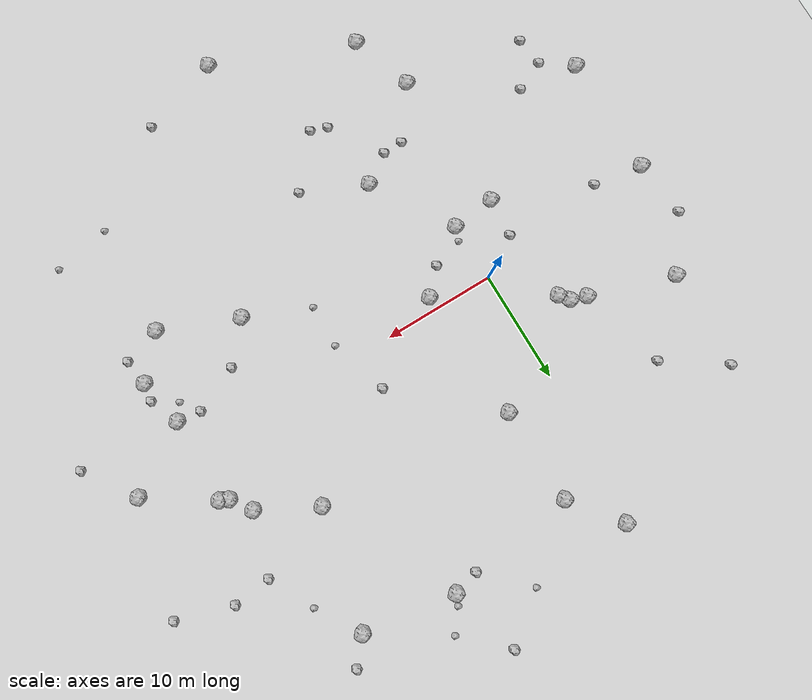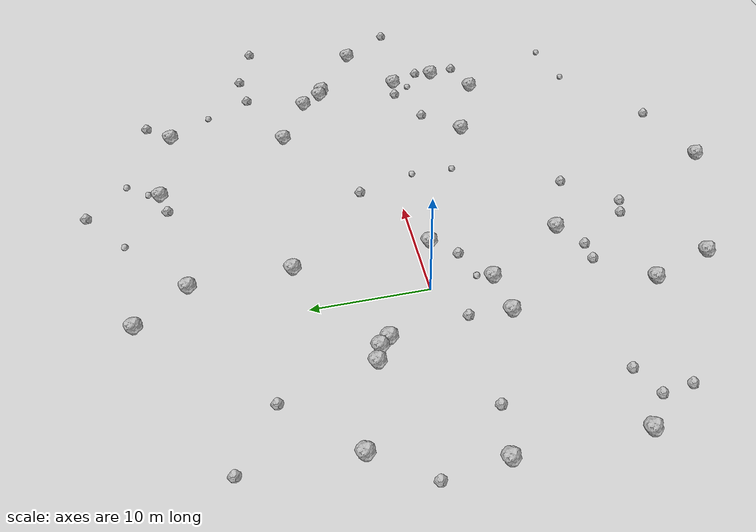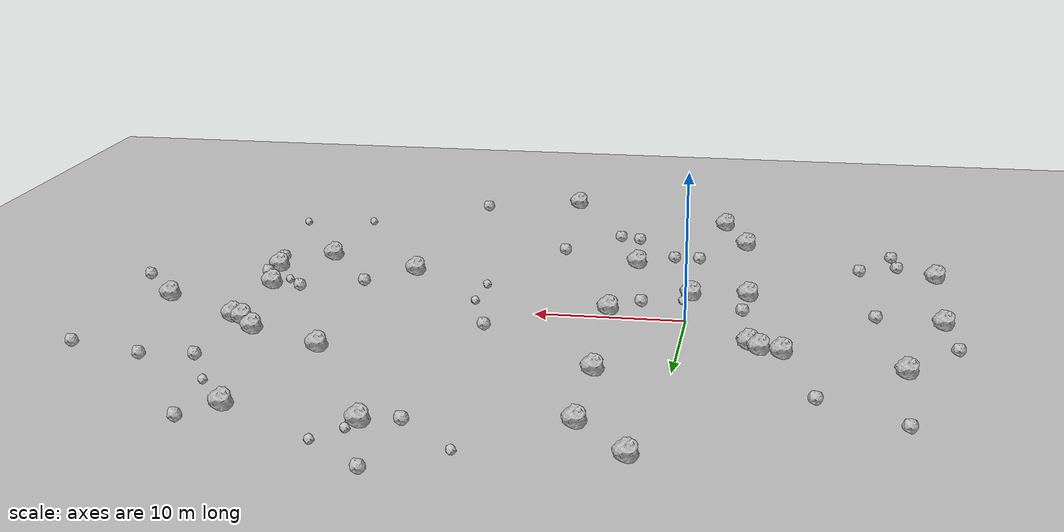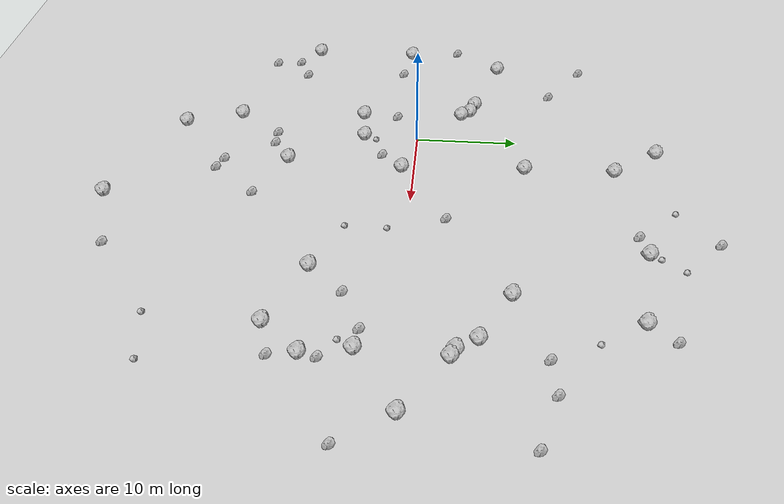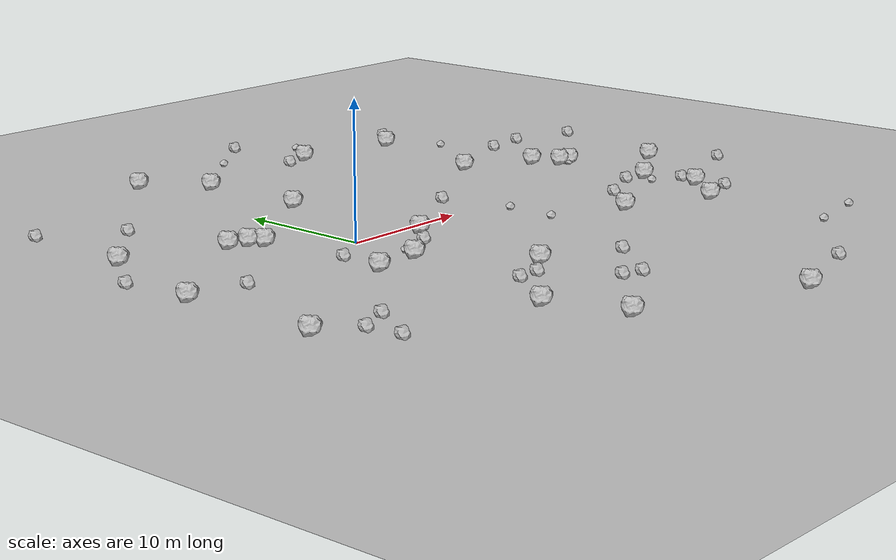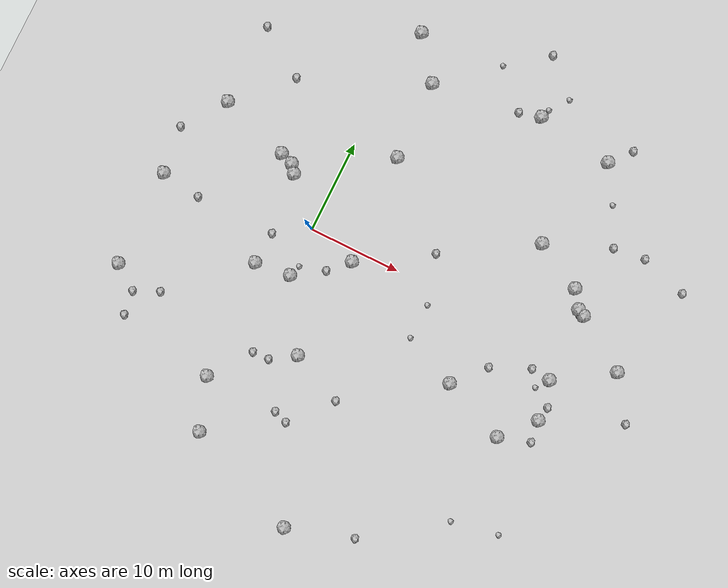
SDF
<sdf version="1.6">
 <world name="default">
  <include><uri>model://custom_ground</uri></include>
  <include><uri>model://sun</uri></include>
  <model name="rock1_0_0">
   <include><uri>model://rock1</uri><pose>22.308620223104214 9.26747592368821 0.5 0 0 0</pose></include>
  </model>
  <model name="rock1_0_1">
   <include><uri>model://rock1</uri><pose>4.562709222028513 -12.443384446380044 0.5 0 0 0</pose></include>
  </model>
  <model name="rock1_0_2">
   <include><uri>model://rock1</uri><pose>24.811328525167355 19.98973940357446 0.5 0 0 0</pose></include>
  </model>
  <model name="rock1_0_3">
   <include><uri>model://rock1</uri><pose>20.008870464836406 -8.090587868503892 0.5 0 0 0</pose></include>
  </model>
  <model name="rock1_0_4">
   <include><uri>model://rock1</uri><pose>29.470454110968937 4.356780229560499 0.5 0 0 0</pose></include>
  </model>
  <model name="rock1_0_5">
   <include><uri>model://rock1</uri><pose>16.444151759151417 21.254955831086896 0.5 0 0 0</pose></include>
  </model>
  <model name="rock1_0_6">
   <include><uri>model://rock1</uri><pose>27.441193810272722 6.542060844040272 0.5 0 0 0</pose></include>
  </model>
  <model name="rock1_0_7">
   <include><uri>model://rock1</uri><pose>-2.9822028394363436 -18.50982843856778 0.5 0 0 0</pose></include>
  </model>
  <model name="rock1_0_8">
   <include><uri>model://rock1</uri><pose>-16.56201720687895 -1.5163516792459788 0.5 0 0 0</pose></include>
  </model>
  <model name="rock1_0_9">
   <include><uri>model://rock1</uri><pose>-16.530783998350156 -12.092335569259326 0.5 0 0 0</pose></include>
  </model>
  <model name="rock1_0_10">
   <include><uri>model://rock1</uri><pose>-1.1012876928839717 -24.00537039598757 0.5 0 0 0</pose></include>
  </model>
  <model name="rock1_0_11">
   <include><uri>model://rock1</uri><pose>35.163526501504606 0.6184716903843572 0.5 0 0 0</pose></include>
  </model>
  <model name="rock1_0_12">
   <include><uri>model://rock1</uri><pose>-4.257730570879854 4.400440445822156 0.5 0 0 0</pose></include>
  </model>
  <model name="rock1_0_13">
   <include><uri>model://rock1</uri><pose>4.723110136697105 10.730525927355636 0.5 0 0 0</pose></include>
  </model>
  <model name="rock1_0_14">
   <include><uri>model://rock1</uri><pose>-6.360068208035969 5.76799929947844 0.5 0 0 0</pose></include>
  </model>
  <model name="rock1_0_15">
   <include><uri>model://rock1</uri><pose>28.7107455233144 4.729115519488744 0.5 0 0 0</pose></include>
  </model>
  <model name="rock1_0_16">
   <include><uri>model://rock1</uri><pose>5.287955324384686 -1.1939486858563733 0.5 0 0 0</pose></include>
  </model>
  <model name="rock1_0_17">
   <include><uri>model://rock1</uri><pose>0.11741777801728404 -5.321752076599356 0.5 0 0 0</pose></include>
  </model>
  <model name="rock1_0_18">
   <include><uri>model://rock1</uri><pose>-4.952026050579846 5.272826522183607 0.5 0 0 0</pose></include>
  </model>
  <model name="rock1_0_19">
   <include><uri>model://rock1</uri><pose>29.94336174089542 -7.479580578999805 0.5 0 0 0</pose></include>
  </model>
  <model name="rock1_0_20">
   <include><uri>model://rock1</uri><pose>11.147084034901372 -28.95110937901299 0.5 0 0 0</pose></include>
  </model>
  <model name="rock1_0_21">
   <include><uri>model://rock1</uri><pose>1.1920050839972731 23.755741985726623 0.5 0 0 0</pose></include>
  </model>
  <model name="rock1_0_22">
   <include><uri>model://rock1</uri><pose>-3.7432479727045482 -5.740278726342208 0.5 0 0 0</pose></include>
  </model>
  <model name="rock1_0_23">
   <include><uri>model://rock1</uri><pose>29.165776066680763 -3.224174789111018 0.5 0 0 0</pose></include>
  </model>
  <model name="rock1_0_24">
   <include><uri>model://rock1</uri><pose>26.854620622841296 -10.90775442842148 0.5 0 0 0</pose></include>
  </model>
  <model name="rock1_0_25">
   <include><uri>model://rock1</uri><pose>-13.900711147749242 8.191447904003972 0.5 0 0 0</pose></include>
  </model>
  <model name="rock1_0_26">
   <include><uri>model://rock1</uri><pose>4.567770396846768 19.39016596392149 0.5 0 0 0</pose></include>
  </model>
  <model name="rock2_0_0">
   <include><uri>model://rock2</uri><pose>30.2533708564413 -5.8881054527053 0.3 0 0 0</pose></include>
  </model>
  <model name="rock2_0_1">
   <include><uri>model://rock2</uri><pose>22.935777543572016 -4.816369977577438 0.3 0 0 0</pose></include>
  </model>
  <model name="rock2_0_2">
   <include><uri>model://rock2</uri><pose>14.69397805485147 27.730520868193338 0.3 0 0 0</pose></include>
  </model>
  <model name="rock2_0_3">
   <include><uri>model://rock2</uri><pose>6.4897586655811 -19.231469428955688 0.3 0 0 0</pose></include>
  </model>
  <model name="rock2_0_4">
   <include><uri>model://rock2</uri><pose>14.086981989050372 20.673280447721083 0.3 0 0 0</pose></include>
  </model>
  <model name="rock2_0_5">
   <include><uri>model://rock2</uri><pose>1.9721722087136158 -14.147955656649662 0.3 0 0 0</pose></include>
  </model>
  <model name="rock2_0_6">
   <include><uri>model://rock2</uri><pose>27.05174821746742 -2.9526014054589993 0.3 0 0 0</pose></include>
  </model>
  <model name="rock2_0_7">
   <include><uri>model://rock2</uri><pose>5.016824085041829 -18.701549802954837 0.3 0 0 0</pose></include>
  </model>
  <model name="rock2_0_8">
   <include><uri>model://rock2</uri><pose>10.162662157523648 -14.953208334670201 0.3 0 0 0</pose></include>
  </model>
  <model name="rock2_0_9">
   <include><uri>model://rock2</uri><pose>37.74074558881411 10.997839764058554 0.3 0 0 0</pose></include>
  </model>
  <model name="rock2_0_10">
   <include><uri>model://rock2</uri><pose>-17.233885184004887 3.6542566736223705 0.3 0 0 0</pose></include>
  </model>
  <model name="rock2_0_11">
   <include><uri>model://rock2</uri><pose>-13.62655181374857 -16.620854768918832 0.3 0 0 0</pose></include>
  </model>
  <model name="rock2_0_12">
   <include><uri>model://rock2</uri><pose>26.711938942056996 22.256227756666448 0.3 0 0 0</pose></include>
  </model>
  <model name="rock2_0_13">
   <include><uri>model://rock2</uri><pose>0.17015938325854307 -14.192471663121541 0.3 0 0 0</pose></include>
  </model>
  <model name="rock2_0_14">
   <include><uri>model://rock2</uri><pose>12.796785483927032 3.4365608689248432 0.3 0 0 0</pose></include>
  </model>
  <model name="rock2_0_15">
   <include><uri>model://rock2</uri><pose>-12.247872790719565 -2.1906554779789538 0.3 0 0 0</pose></include>
  </model>
  <model name="rock2_0_16">
   <include><uri>model://rock2</uri><pose>-3.568034473757681 -2.217047268998769 0.3 0 0 0</pose></include>
  </model>
  <model name="rock2_0_17">
   <include><uri>model://rock2</uri><pose>18.23534807301901 -26.76183472839397 0.3 0 0 0</pose></include>
  </model>
  <model name="rock2_0_18">
   <include><uri>model://rock2</uri><pose>-13.960352695234823 -14.028806909160709 0.3 0 0 0</pose></include>
  </model>
  <model name="rock2_0_19">
   <include><uri>model://rock2</uri><pose>30.270348449529223 -9.8574451921139 0.3 0 0 0</pose></include>
  </model>
  <model name="rock2_0_20">
   <include><uri>model://rock2</uri><pose>-11.308309938455904 -12.822765915465723 0.3 0 0 0</pose></include>
  </model>
  <model name="rock2_0_21">
   <include><uri>model://rock2</uri><pose>-13.774340450145209 17.202986008786233 0.3 0 0 0</pose></include>
  </model>
  <model name="rock2_0_22">
   <include><uri>model://rock2</uri><pose>-8.578581905736723 13.654939459167167 0.3 0 0 0</pose></include>
  </model>
  <model name="rock2_0_23">
   <include><uri>model://rock2</uri><pose>38.270993657163025 -3.8584984044349326 0.3 0 0 0</pose></include>
  </model>
  <model name="rock2_0_24">
   <include><uri>model://rock2</uri><pose>3.275502488908522 -3.2360365315144115 0.3 0 0 0</pose></include>
  </model>
  <model name="rock2_0_25">
   <include><uri>model://rock2</uri><pose>29.238032917530383 12.126386647046026 0.3 0 0 0</pose></include>
  </model>
  <model name="rock2_0_26">
   <include><uri>model://rock2</uri><pose>32.699692116814475 12.536044358993209 0.3 0 0 0</pose></include>
  </model>
  <model name="rock3_0_0">
   <include><uri>model://rock3</uri><pose>26.339779061743563 -20.87643342858989 0.2 0 0 0</pose></include>
  </model>
  <model name="rock3_0_1">
   <include><uri>model://rock3</uri><pose>14.268697191161152 -5.686227768458814 0.2 0 0 0</pose></include>
  </model>
  <model name="rock3_0_2">
   <include><uri>model://rock3</uri><pose>18.313080672262124 24.19514584638972 0.2 0 0 0</pose></include>
  </model>
  <model name="rock3_0_3">
   <include><uri>model://rock3</uri><pose>0.510087046909419 -4.102163464911062 0.2 0 0 0</pose></include>
  </model>
  <model name="rock3_0_4">
   <include><uri>model://rock3</uri><pose>27.212604149788028 16.149870492937133 0.2 0 0 0</pose></include>
  </model>
  <model name="rock3_0_5">
   <include><uri>model://rock3</uri><pose>14.357524419121042 -1.8383093050265344 0.2 0 0 0</pose></include>
  </model>
  <model name="rock3_0_6">
   <include><uri>model://rock3</uri><pose>31.398113162008258 -19.955635350931352 0.2 0 0 0</pose></include>
  </model>
  <model name="rock3_0_7">
   <include><uri>model://rock3</uri><pose>16.83361836040531 22.264365480721366 0.2 0 0 0</pose></include>
  </model>
  <model name="rock3_0_8">
   <include><uri>model://rock3</uri><pose>28.99519655461924 4.098234992048951 0.2 0 0 0</pose></include>
  </model>
  <model name="rock3_0_9">
   <include><uri>model://rock3</uri><pose>10.42737739412581 24.39211708817001 0.2 0 0 0</pose></include>
  </model>
  <model name="rock3_0_10">
   <include><uri>model://rock3</uri><pose>28.202101736493987 -4.596706770136617 0.2 0 0 0</pose></include>
  </model>
 </world>
</sdf>
